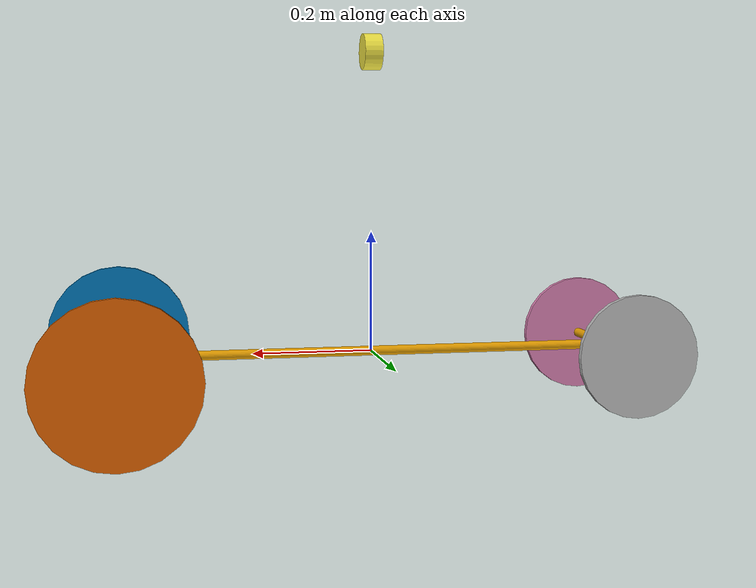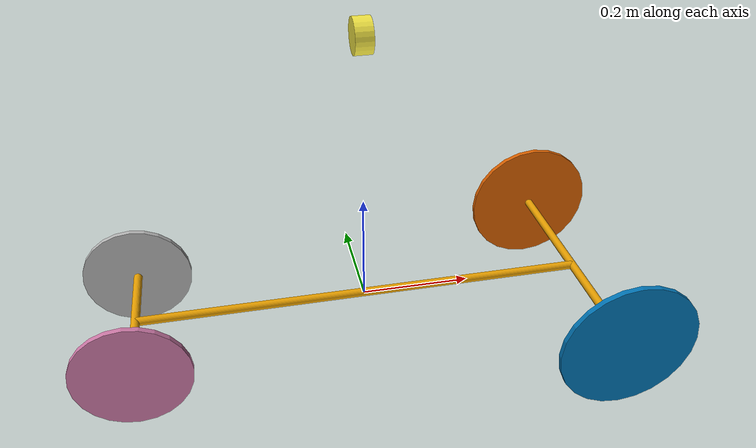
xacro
<?xml version="1.0" ?>

<robot name="hivebot" xmlns:xacro="http://www.ros.org/wiki/xacro">
    <xacro:property name="TUBE_RADIUS" value="8e-3"/>
    <xacro:property name="CENTER_TUBE_LENGTH" value="0.8382"/>
    <xacro:property name="FRONT_TUBE_LENGTH" value="0.4826"/>
    <xacro:property name="BACK_TUBE_LENGTH" value="0.28"/>
    <xacro:property name="WHEEL_RADIUS" value="0.1016"/>
    <xacro:property name="PI" value="3.1415926"/>

    <xacro:include filename="$(find freehicle_description)/urdf/freehicle/wheel.xacro" />

    <link name="body">
        <inertial>
            <mass value="1"/>
            <origin rpy="0 0 0" xyz="0 0 0"/>
            <inertia ixx="0.01" ixy="0.0" ixz="0.0"
                     iyy="0.01" iyz="0.0"
                     izz="0.01"/>
        </inertial>
        <collision name="center_tube">
            <origin rpy="0 ${PI/2} 0" xyz="0 0 0"/>
            <geometry>
                <cylinder radius="${TUBE_RADIUS}" length="${CENTER_TUBE_LENGTH}" />
            </geometry>
        </collision>
        <visual name="center_tube">
            <origin rpy="0 ${PI/2} 0" xyz="0 0 0"/>
            <geometry>
                <cylinder radius="${TUBE_RADIUS}" length="${CENTER_TUBE_LENGTH}" />
            </geometry>
        </visual>
        <collision name="back_tube">
            <origin rpy="${PI/2} 0 0" xyz="${CENTER_TUBE_LENGTH/2} 0 0"/>
            <geometry>
                <cylinder radius="${TUBE_RADIUS}" length="${FRONT_TUBE_LENGTH}" />
            </geometry>
        </collision>
        <visual name="back_tube">
            <origin rpy="${PI/2} 0 0" xyz="${CENTER_TUBE_LENGTH/2} 0 0"/>
            <geometry>
                <cylinder radius="${TUBE_RADIUS}" length="${FRONT_TUBE_LENGTH}" />
            </geometry>
        </visual>
        <collision name="back_tube">
            <origin rpy="${PI/2} 0 0" xyz="-${CENTER_TUBE_LENGTH/2} 0 0"/>
            <geometry>
                <cylinder radius="${TUBE_RADIUS}" length="${BACK_TUBE_LENGTH}" />
            </geometry>
        </collision>
        <visual name="back_tube">
            <origin rpy="${PI/2} 0 0" xyz="-${CENTER_TUBE_LENGTH/2} 0 0"/>
            <geometry>
                <cylinder radius="${TUBE_RADIUS}" length="${BACK_TUBE_LENGTH}" />
            </geometry>
        </visual>
    </link>

    <link name="front_left_link">
        <inertial>
            <mass value="0.01"/>
            <origin rpy="0 0 0" xyz="0 0 0"/>
            <inertia ixx="1e-9" ixy="0.0" ixz="0.0"
                     iyy="1e-9" iyz="0.0"
                     izz="1e-9"/>
        </inertial>
    </link>
    <joint name="front_left_link" type="revolute">
        <parent link="body"/>
        <child link="front_left_link"/>
        <origin rpy="0 0 0" xyz="${CENTER_TUBE_LENGTH/2} -${FRONT_TUBE_LENGTH/2} 0"/>
        <axis xyz="0 0 1"/>
        <limit effort="0" velocity="0" lower="-${PI/8}" upper="${PI/8}" />
    </joint>
    <link name="front_right_link">
        <inertial>
            <mass value="0.01"/>
            <origin rpy="0 0 0" xyz="0 0 0"/>
            <inertia ixx="1e-9" ixy="0.0" ixz="0.0"
                     iyy="1e-9" iyz="0.0"
                     izz="1e-9"/>
        </inertial>
    </link>
    <joint name="front_right_link" type="revolute">
        <parent link="body"/>
        <child link="front_right_link"/>
        <origin rpy="0 0 0" xyz="${CENTER_TUBE_LENGTH/2} ${FRONT_TUBE_LENGTH/2} 0"/>
        <axis xyz="0 0 1"/>
        <limit effort="0" velocity="0" lower="-${PI/8}" upper="${PI/8}" />
    </joint>

    <link name="camera">
        <inertial>
            <mass value="0.01"/>
            <origin rpy="0 0 0" xyz="0 0 0"/>
            <inertia ixx="1e-9" ixy="0.0" ixz="0.0"
                     iyy="1e-9" iyz="0.0"
                     izz="1e-9"/>
        </inertial>
            <visual name="center_tube">
            <origin rpy="0 ${PI/2} 0" xyz="0 0 0"/>
            <geometry>
                <cylinder radius="0.03" length="0.03" />
            </geometry>
        </visual>
    </link>
    <joint name="camera" type="fixed">
        <parent link="body"/>
        <child link="camera"/>
        <origin rpy="0 0 0" xyz="0 0 0.5"/>
        <axis xyz="0 0 1"/>
    </joint>

    <xacro:wheel name="front_left" origin="front_left_link" radius="0.127" x_offset="0" y_offset="0" />
    <xacro:wheel name="front_right" origin="front_right_link" radius="0.127" x_offset="0" y_offset="0" />
    <xacro:wheel name="back_left" origin="body" radius="${WHEEL_RADIUS}" x_offset="-${CENTER_TUBE_LENGTH/2}" y_offset="-${BACK_TUBE_LENGTH/2}" />
    <xacro:wheel name="back_right" origin="body" radius="${WHEEL_RADIUS}" x_offset="-${CENTER_TUBE_LENGTH/2}" y_offset="${BACK_TUBE_LENGTH/2}" />

</robot>

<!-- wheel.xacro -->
<robot name="hive" xmlns:xacro="http://www.ros.org/wiki/xacro">
    <xacro:macro name="wheel" params="name origin radius x_offset y_offset">
        <link name="wheel_${name}">
            <inertial>
                <mass value="1"/>
                <origin rpy="0 0 0" xyz="0 0 0"/>
                <inertia ixx="0.05" ixy="0" ixz="0"
                         iyy="0.05" iyz="0"
                         izz="0.05"/>
            </inertial>
            <collision name="collision">
                <origin rpy="${PI/2} 0 0" xyz="0  0  0"/>
                <geometry>
                    <cylinder radius="${radius}" length="0.01" />
                </geometry>
            </collision>
            <visual name="visual">
                <origin rpy="${PI/2} 0 0" xyz="0  0  0"/>
                <geometry>
                    <cylinder radius="${radius}" length="0.01" />
                </geometry>
            </visual>
        </link>

        <joint name="wheel_${name}" type="continuous">
            <parent link="${origin}"/>
            <child link="wheel_${name}"/>
            <dynamics damping="0.0" friction="0.0"/>
            <origin rpy="0 0 0" xyz="${x_offset} ${y_offset} 0"/>
            <axis xyz="0 1 0"/>
        </joint>

    </xacro:macro>
</robot>
